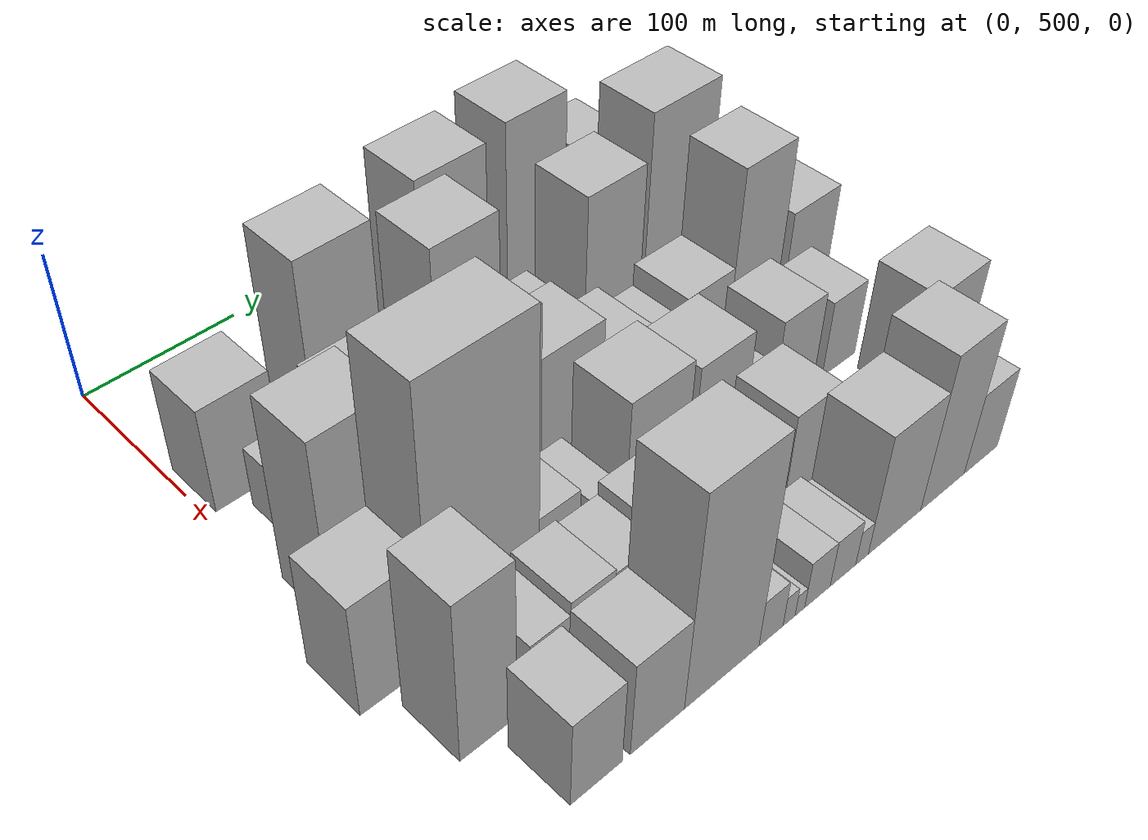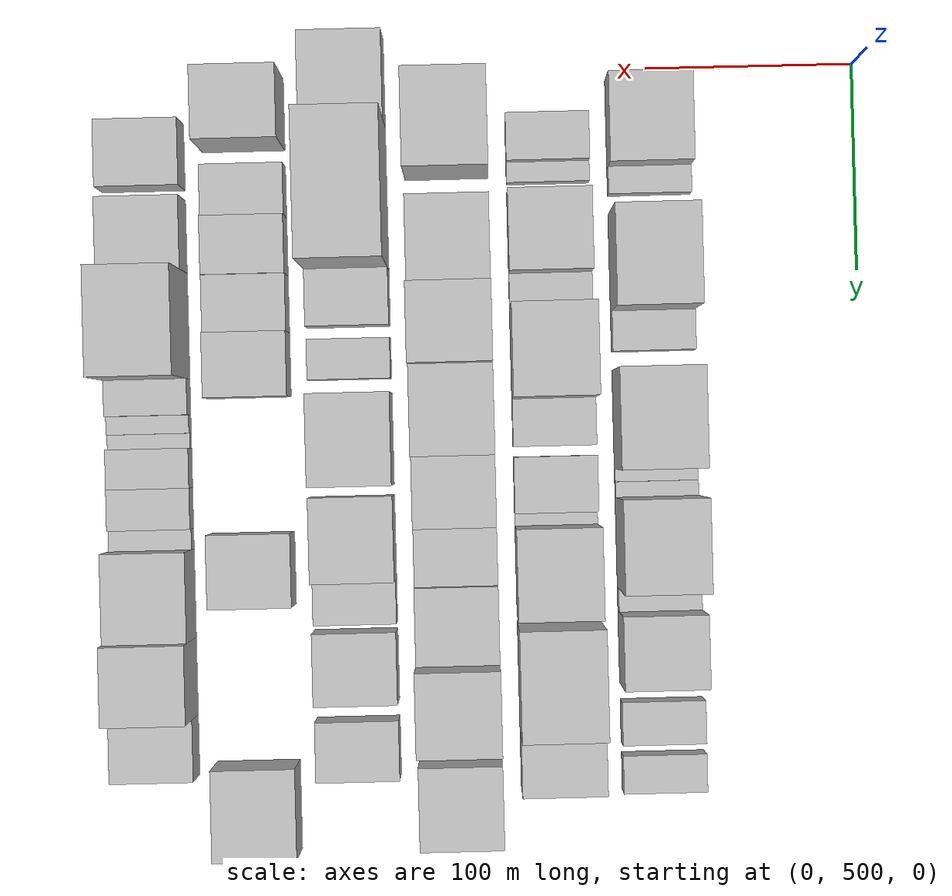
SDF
<sdf version="1.6">
 <world name="default">
  <model name="building_37">
   <static>1</static>
   <pose>100.0000 526.7588 0 0.000000 0.000000 0.000000</pose>
   <link name="link">
    <pose>0 0 36.00 0 0 0</pose>
    <collision name="collision"><geometry><box><size>40.0000 42.7969 72.0000</size></box></geometry></collision>
    <visual name="visual">
     <cast_shadows>0</cast_shadows>
     <geometry><box><size>40.0000 42.7969 72.0000</size></box></geometry>
     <material>
      <script>
       <uri>model://HANNAS_wall/materials/scripts</uri>
       <uri>model://HANNAS_wall/materials/textures</uri>
       <name>vrc/HANNAS_wall</name>
      </script>
     </material>
    </visual>
   </link>
  </model>
  <model name="building_38">
   <static>1</static>
   <pose>100.0000 554.7449 0 0.000000 0.000000 0.000000</pose>
   <link name="link">
    <pose>0 0 13.50 0 0 0</pose>
    <collision name="collision"><geometry><box><size>40.0000 13.1755 27.0000</size></box></geometry></collision>
    <visual name="visual">
     <cast_shadows>0</cast_shadows>
     <geometry><box><size>40.0000 13.1755 27.0000</size></box></geometry>
     <material>
      <script>
       <uri>model://HANNAS_wall/materials/scripts</uri>
       <uri>model://HANNAS_wall/materials/textures</uri>
       <name>vrc/HANNAS_wall</name>
      </script>
     </material>
    </visual>
   </link>
  </model>
  <model name="building_39">
   <static>1</static>
   <pose>100.0000 594.0630 0 0.000000 0.000000 0.000000</pose>
   <link name="link">
    <pose>0 0 64.50 0 0 0</pose>
    <collision name="collision"><geometry><box><size>40.0000 47.4605 129.0000</size></box></geometry></collision>
    <visual name="visual">
     <cast_shadows>0</cast_shadows>
     <geometry><box><size>40.0000 47.4605 129.0000</size></box></geometry>
     <material>
      <script>
       <uri>model://HANNAS_wall/materials/scripts</uri>
       <uri>model://HANNAS_wall/materials/textures</uri>
       <name>vrc/HANNAS_wall</name>
      </script>
     </material>
    </visual>
   </link>
  </model>
  <model name="building_40">
   <static>1</static>
   <pose>100.0000 627.4713 0 0.000000 0.000000 0.000000</pose>
   <link name="link">
    <pose>0 0 16.50 0 0 0</pose>
    <collision name="collision"><geometry><box><size>40.0000 19.3562 33.0000</size></box></geometry></collision>
    <visual name="visual">
     <cast_shadows>0</cast_shadows>
     <geometry><box><size>40.0000 19.3562 33.0000</size></box></geometry>
     <material>
      <script>
       <uri>model://HANNAS_wall/materials/scripts</uri>
       <uri>model://HANNAS_wall/materials/textures</uri>
       <name>vrc/HANNAS_wall</name>
      </script>
     </material>
    </visual>
   </link>
  </model>
  <model name="building_41">
   <static>1</static>
   <pose>100.0000 669.9768 0 0.000000 0.000000 0.000000</pose>
   <link name="link">
    <pose>0 0 69.00 0 0 0</pose>
    <collision name="collision"><geometry><box><size>40.0000 47.6547 138.0000</size></box></geometry></collision>
    <visual name="visual">
     <cast_shadows>0</cast_shadows>
     <geometry><box><size>40.0000 47.6547 138.0000</size></box></geometry>
     <material>
      <script>
       <uri>model://HANNAS_wall/materials/scripts</uri>
       <uri>model://HANNAS_wall/materials/textures</uri>
       <name>vrc/HANNAS_wall</name>
      </script>
     </material>
    </visual>
   </link>
  </model>
  <model name="building_42">
   <static>1</static>
   <pose>100.0000 696.9047 0 0.000000 0.000000 0.000000</pose>
   <link name="link">
    <pose>0 0 7.50 0 0 0</pose>
    <collision name="collision"><geometry><box><size>40.0000 6.2011 15.0000</size></box></geometry></collision>
    <visual name="visual">
     <cast_shadows>0</cast_shadows>
     <geometry><box><size>40.0000 6.2011 15.0000</size></box></geometry>
     <material>
      <script>
       <uri>model://HANNAS_wall/materials/scripts</uri>
       <uri>model://HANNAS_wall/materials/textures</uri>
       <name>vrc/HANNAS_wall</name>
      </script>
     </material>
    </visual>
   </link>
  </model>
  <model name="building_43">
   <static>1</static>
   <pose>100.0000 703.7398 0 0.000000 0.000000 0.000000</pose>
   <link name="link">
    <pose>0 0 9.00 0 0 0</pose>
    <collision name="collision"><geometry><box><size>40.0000 7.4693 18.0000</size></box></geometry></collision>
    <visual name="visual">
     <cast_shadows>0</cast_shadows>
     <geometry><box><size>40.0000 7.4693 18.0000</size></box></geometry>
     <material>
      <script>
       <uri>model://HANNAS_wall/materials/scripts</uri>
       <uri>model://HANNAS_wall/materials/textures</uri>
       <name>vrc/HANNAS_wall</name>
      </script>
     </material>
    </visual>
   </link>
  </model>
  <model name="building_44">
   <static>1</static>
   <pose>100.0000 729.4674 0 0.000000 0.000000 0.000000</pose>
   <link name="link">
    <pose>0 0 72.00 0 0 0</pose>
    <collision name="collision"><geometry><box><size>40.0000 43.9859 144.0000</size></box></geometry></collision>
    <visual name="visual">
     <cast_shadows>0</cast_shadows>
     <geometry><box><size>40.0000 43.9859 144.0000</size></box></geometry>
     <material>
      <script>
       <uri>model://HANNAS_wall/materials/scripts</uri>
       <uri>model://HANNAS_wall/materials/textures</uri>
       <name>vrc/HANNAS_wall</name>
      </script>
     </material>
    </visual>
   </link>
  </model>
  <model name="building_45">
   <static>1</static>
   <pose>100.0000 757.0156 0 0.000000 0.000000 0.000000</pose>
   <link name="link">
    <pose>0 0 13.50 0 0 0</pose>
    <collision name="collision"><geometry><box><size>40.0000 11.1105 27.0000</size></box></geometry></collision>
    <visual name="visual">
     <cast_shadows>0</cast_shadows>
     <geometry><box><size>40.0000 11.1105 27.0000</size></box></geometry>
     <material>
      <script>
       <uri>model://HANNAS_wall/materials/scripts</uri>
       <uri>model://HANNAS_wall/materials/textures</uri>
       <name>vrc/HANNAS_wall</name>
      </script>
     </material>
    </visual>
   </link>
  </model>
  <model name="building_46">
   <static>1</static>
   <pose>100.0000 780.0352 0 0.000000 0.000000 0.000000</pose>
   <link name="link">
    <pose>0 0 49.50 0 0 0</pose>
    <collision name="collision"><geometry><box><size>40.0000 34.9288 99.0000</size></box></geometry></collision>
    <visual name="visual">
     <cast_shadows>0</cast_shadows>
     <geometry><box><size>40.0000 34.9288 99.0000</size></box></geometry>
     <material>
      <script>
       <uri>model://HANNAS_wall/materials/scripts</uri>
       <uri>model://HANNAS_wall/materials/textures</uri>
       <name>vrc/HANNAS_wall</name>
      </script>
     </material>
    </visual>
   </link>
  </model>
  <model name="building_47">
   <static>1</static>
   <pose>100.0000 815.9037 0 0.000000 0.000000 0.000000</pose>
   <link name="link">
    <pose>0 0 19.50 0 0 0</pose>
    <collision name="collision"><geometry><box><size>40.0000 20.8082 39.0000</size></box></geometry></collision>
    <visual name="visual">
     <cast_shadows>0</cast_shadows>
     <geometry><box><size>40.0000 20.8082 39.0000</size></box></geometry>
     <material>
      <script>
       <uri>model://HANNAS_wall/materials/scripts</uri>
       <uri>model://HANNAS_wall/materials/textures</uri>
       <name>vrc/HANNAS_wall</name>
      </script>
     </material>
    </visual>
   </link>
  </model>
  <model name="building_48">
   <static>1</static>
   <pose>100.0000 840.4531 0 0.000000 0.000000 0.000000</pose>
   <link name="link">
    <pose>0 0 18.00 0 0 0</pose>
    <collision name="collision"><geometry><box><size>40.0000 18.2907 36.0000</size></box></geometry></collision>
    <visual name="visual">
     <cast_shadows>0</cast_shadows>
     <geometry><box><size>40.0000 18.2907 36.0000</size></box></geometry>
     <material>
      <script>
       <uri>model://HANNAS_wall/materials/scripts</uri>
       <uri>model://HANNAS_wall/materials/textures</uri>
       <name>vrc/HANNAS_wall</name>
      </script>
     </material>
    </visual>
   </link>
  </model>
  <model name="building_89">
   <static>1</static>
   <pose>149.0000 533.3985 0 0.000000 0.000000 0.000000</pose>
   <link name="link">
    <pose>0 0 21.00 0 0 0</pose>
    <collision name="collision"><geometry><box><size>40.0000 22.8492 42.0000</size></box></geometry></collision>
    <visual name="visual">
     <cast_shadows>0</cast_shadows>
     <geometry><box><size>40.0000 22.8492 42.0000</size></box></geometry>
     <material>
      <script>
       <uri>model://HANNAS_wall/materials/scripts</uri>
       <uri>model://HANNAS_wall/materials/textures</uri>
       <name>vrc/HANNAS_wall</name>
      </script>
     </material>
    </visual>
   </link>
  </model>
  <model name="building_90">
   <static>1</static>
   <pose>149.0000 549.6936 0 0.000000 0.000000 0.000000</pose>
   <link name="link">
    <pose>0 0 12.00 0 0 0</pose>
    <collision name="collision"><geometry><box><size>40.0000 9.7409 24.0000</size></box></geometry></collision>
    <visual name="visual">
     <cast_shadows>0</cast_shadows>
     <geometry><box><size>40.0000 9.7409 24.0000</size></box></geometry>
     <material>
      <script>
       <uri>model://HANNAS_wall/materials/scripts</uri>
       <uri>model://HANNAS_wall/materials/textures</uri>
       <name>vrc/HANNAS_wall</name>
      </script>
     </material>
    </visual>
   </link>
  </model>
  <model name="building_91">
   <static>1</static>
   <pose>149.0000 579.0692 0 0.000000 0.000000 0.000000</pose>
   <link name="link">
    <pose>0 0 37.50 0 0 0</pose>
    <collision name="collision"><geometry><box><size>40.0000 39.0102 75.0000</size></box></geometry></collision>
    <visual name="visual">
     <cast_shadows>0</cast_shadows>
     <geometry><box><size>40.0000 39.0102 75.0000</size></box></geometry>
     <material>
      <script>
       <uri>model://HANNAS_wall/materials/scripts</uri>
       <uri>model://HANNAS_wall/materials/textures</uri>
       <name>vrc/HANNAS_wall</name>
      </script>
     </material>
    </visual>
   </link>
  </model>
  <model name="building_92">
   <static>1</static>
   <pose>149.0000 606.8442 0 0.000000 0.000000 0.000000</pose>
   <link name="link">
    <pose>0 0 15.00 0 0 0</pose>
    <collision name="collision"><geometry><box><size>40.0000 16.5398 30.0000</size></box></geometry></collision>
    <visual name="visual">
     <cast_shadows>0</cast_shadows>
     <geometry><box><size>40.0000 16.5398 30.0000</size></box></geometry>
     <material>
      <script>
       <uri>model://HANNAS_wall/materials/scripts</uri>
       <uri>model://HANNAS_wall/materials/textures</uri>
       <name>vrc/HANNAS_wall</name>
      </script>
     </material>
    </visual>
   </link>
  </model>
  <model name="building_93">
   <static>1</static>
   <pose>149.0000 637.0283 0 0.000000 0.000000 0.000000</pose>
   <link name="link">
    <pose>0 0 70.50 0 0 0</pose>
    <collision name="collision"><geometry><box><size>40.0000 43.8283 141.0000</size></box></geometry></collision>
    <visual name="visual">
     <cast_shadows>0</cast_shadows>
     <geometry><box><size>40.0000 43.8283 141.0000</size></box></geometry>
     <material>
      <script>
       <uri>model://HANNAS_wall/materials/scripts</uri>
       <uri>model://HANNAS_wall/materials/textures</uri>
       <name>vrc/HANNAS_wall</name>
      </script>
     </material>
    </visual>
   </link>
  </model>
  <model name="building_94">
   <static>1</static>
   <pose>149.0000 670.3861 0 0.000000 0.000000 0.000000</pose>
   <link name="link">
    <pose>0 0 21.00 0 0 0</pose>
    <collision name="collision"><geometry><box><size>40.0000 22.8873 42.0000</size></box></geometry></collision>
    <visual name="visual">
     <cast_shadows>0</cast_shadows>
     <geometry><box><size>40.0000 22.8873 42.0000</size></box></geometry>
     <material>
      <script>
       <uri>model://HANNAS_wall/materials/scripts</uri>
       <uri>model://HANNAS_wall/materials/textures</uri>
       <name>vrc/HANNAS_wall</name>
      </script>
     </material>
    </visual>
   </link>
  </model>
  <model name="building_95">
   <static>1</static>
   <pose>149.0000 700.3222 0 0.000000 0.000000 0.000000</pose>
   <link name="link">
    <pose>0 0 24.00 0 0 0</pose>
    <collision name="collision"><geometry><box><size>40.0000 26.9847 48.0000</size></box></geometry></collision>
    <visual name="visual">
     <cast_shadows>0</cast_shadows>
     <geometry><box><size>40.0000 26.9847 48.0000</size></box></geometry>
     <material>
      <script>
       <uri>model://HANNAS_wall/materials/scripts</uri>
       <uri>model://HANNAS_wall/materials/textures</uri>
       <name>vrc/HANNAS_wall</name>
      </script>
     </material>
    </visual>
   </link>
  </model>
  <model name="building_96">
   <static>1</static>
   <pose>149.0000 716.9874 0 0.000000 0.000000 0.000000</pose>
   <link name="link">
    <pose>0 0 7.50 0 0 0</pose>
    <collision name="collision"><geometry><box><size>40.0000 6.3458 15.0000</size></box></geometry></collision>
    <visual name="visual">
     <cast_shadows>0</cast_shadows>
     <geometry><box><size>40.0000 6.3458 15.0000</size></box></geometry>
     <material>
      <script>
       <uri>model://HANNAS_wall/materials/scripts</uri>
       <uri>model://HANNAS_wall/materials/textures</uri>
       <name>vrc/HANNAS_wall</name>
      </script>
     </material>
    </visual>
   </link>
  </model>
  <model name="building_97">
   <static>1</static>
   <pose>149.0000 741.8357 0 0.000000 0.000000 0.000000</pose>
   <link name="link">
    <pose>0 0 58.50 0 0 0</pose>
    <collision name="collision"><geometry><box><size>40.0000 43.3508 117.0000</size></box></geometry></collision>
    <visual name="visual">
     <cast_shadows>0</cast_shadows>
     <geometry><box><size>40.0000 43.3508 117.0000</size></box></geometry>
     <material>
      <script>
       <uri>model://HANNAS_wall/materials/scripts</uri>
       <uri>model://HANNAS_wall/materials/textures</uri>
       <name>vrc/HANNAS_wall</name>
      </script>
     </material>
    </visual>
   </link>
  </model>
  <model name="building_98">
   <static>1</static>
   <pose>149.0000 792.3505 0 0.000000 0.000000 0.000000</pose>
   <link name="link">
    <pose>0 0 73.50 0 0 0</pose>
    <collision name="collision"><geometry><box><size>40.0000 51.6787 147.0000</size></box></geometry></collision>
    <visual name="visual">
     <cast_shadows>0</cast_shadows>
     <geometry><box><size>40.0000 51.6787 147.0000</size></box></geometry>
     <material>
      <script>
       <uri>model://HANNAS_wall/materials/scripts</uri>
       <uri>model://HANNAS_wall/materials/textures</uri>
       <name>vrc/HANNAS_wall</name>
      </script>
     </material>
    </visual>
   </link>
  </model>
  <model name="building_99">
   <static>1</static>
   <pose>149.0000 832.3659 0 0.000000 0.000000 0.000000</pose>
   <link name="link">
    <pose>0 0 46.50 0 0 0</pose>
    <collision name="collision"><geometry><box><size>40.0000 28.3522 93.0000</size></box></geometry></collision>
    <visual name="visual">
     <cast_shadows>0</cast_shadows>
     <geometry><box><size>40.0000 28.3522 93.0000</size></box></geometry>
     <material>
      <script>
       <uri>model://HANNAS_wall/materials/scripts</uri>
       <uri>model://HANNAS_wall/materials/textures</uri>
       <name>vrc/HANNAS_wall</name>
      </script>
     </material>
    </visual>
   </link>
  </model>
  <model name="building_138">
   <static>1</static>
   <pose>198.0000 527.9364 0 0.000000 0.000000 0.000000</pose>
   <link name="link">
    <pose>0 0 63.00 0 0 0</pose>
    <collision name="collision"><geometry><box><size>40.0000 46.4230 126.0000</size></box></geometry></collision>
    <visual name="visual">
     <cast_shadows>0</cast_shadows>
     <geometry><box><size>40.0000 46.4230 126.0000</size></box></geometry>
     <material>
      <script>
       <uri>model://HANNAS_wall/materials/scripts</uri>
       <uri>model://HANNAS_wall/materials/textures</uri>
       <name>vrc/HANNAS_wall</name>
      </script>
     </material>
    </visual>
   </link>
  </model>
  <model name="building_139">
   <static>1</static>
   <pose>198.0000 582.4349 0 0.000000 0.000000 0.000000</pose>
   <link name="link">
    <pose>0 0 36.00 0 0 0</pose>
    <collision name="collision"><geometry><box><size>40.0000 42.5741 72.0000</size></box></geometry></collision>
    <visual name="visual">
     <cast_shadows>0</cast_shadows>
     <geometry><box><size>40.0000 42.5741 72.0000</size></box></geometry>
     <material>
      <script>
       <uri>model://HANNAS_wall/materials/scripts</uri>
       <uri>model://HANNAS_wall/materials/textures</uri>
       <name>vrc/HANNAS_wall</name>
      </script>
     </material>
    </visual>
   </link>
  </model>
  <model name="building_140">
   <static>1</static>
   <pose>198.0000 622.7360 0 0.000000 0.000000 0.000000</pose>
   <link name="link">
    <pose>0 0 61.50 0 0 0</pose>
    <collision name="collision"><geometry><box><size>40.0000 38.0282 123.0000</size></box></geometry></collision>
    <visual name="visual">
     <cast_shadows>0</cast_shadows>
     <geometry><box><size>40.0000 38.0282 123.0000</size></box></geometry>
     <material>
      <script>
       <uri>model://HANNAS_wall/materials/scripts</uri>
       <uri>model://HANNAS_wall/materials/textures</uri>
       <name>vrc/HANNAS_wall</name>
      </script>
     </material>
    </visual>
   </link>
  </model>
  <model name="building_141">
   <static>1</static>
   <pose>198.0000 663.5249 0 0.000000 0.000000 0.000000</pose>
   <link name="link">
    <pose>0 0 43.50 0 0 0</pose>
    <collision name="collision"><geometry><box><size>40.0000 43.5496 87.0000</size></box></geometry></collision>
    <visual name="visual">
     <cast_shadows>0</cast_shadows>
     <geometry><box><size>40.0000 43.5496 87.0000</size></box></geometry>
     <material>
      <script>
       <uri>model://HANNAS_wall/materials/scripts</uri>
       <uri>model://HANNAS_wall/materials/textures</uri>
       <name>vrc/HANNAS_wall</name>
      </script>
     </material>
    </visual>
   </link>
  </model>
  <model name="building_142">
   <static>1</static>
   <pose>198.0000 702.5940 0 0.000000 0.000000 0.000000</pose>
   <link name="link">
    <pose>0 0 31.50 0 0 0</pose>
    <collision name="collision"><geometry><box><size>40.0000 34.5884 63.0000</size></box></geometry></collision>
    <visual name="visual">
     <cast_shadows>0</cast_shadows>
     <geometry><box><size>40.0000 34.5884 63.0000</size></box></geometry>
     <material>
      <script>
       <uri>model://HANNAS_wall/materials/scripts</uri>
       <uri>model://HANNAS_wall/materials/textures</uri>
       <name>vrc/HANNAS_wall</name>
      </script>
     </material>
    </visual>
   </link>
  </model>
  <model name="building_143">
   <static>1</static>
   <pose>198.0000 733.8267 0 0.000000 0.000000 0.000000</pose>
   <link name="link">
    <pose>0 0 24.00 0 0 0</pose>
    <collision name="collision"><geometry><box><size>40.0000 27.8770 48.0000</size></box></geometry></collision>
    <visual name="visual">
     <cast_shadows>0</cast_shadows>
     <geometry><box><size>40.0000 27.8770 48.0000</size></box></geometry>
     <material>
      <script>
       <uri>model://HANNAS_wall/materials/scripts</uri>
       <uri>model://HANNAS_wall/materials/textures</uri>
       <name>vrc/HANNAS_wall</name>
      </script>
     </material>
    </visual>
   </link>
  </model>
  <model name="building_144">
   <static>1</static>
   <pose>198.0000 766.4471 0 0.000000 0.000000 0.000000</pose>
   <link name="link">
    <pose>0 0 31.50 0 0 0</pose>
    <collision name="collision"><geometry><box><size>40.0000 37.3639 63.0000</size></box></geometry></collision>
    <visual name="visual">
     <cast_shadows>0</cast_shadows>
     <geometry><box><size>40.0000 37.3639 63.0000</size></box></geometry>
     <material>
      <script>
       <uri>model://HANNAS_wall/materials/scripts</uri>
       <uri>model://HANNAS_wall/materials/textures</uri>
       <name>vrc/HANNAS_wall</name>
      </script>
     </material>
    </visual>
   </link>
  </model>
  <model name="building_145">
   <static>1</static>
   <pose>198.0000 805.2379 0 0.000000 0.000000 0.000000</pose>
   <link name="link">
    <pose>0 0 64.50 0 0 0</pose>
    <collision name="collision"><geometry><box><size>40.0000 40.2177 129.0000</size></box></geometry></collision>
    <visual name="visual">
     <cast_shadows>0</cast_shadows>
     <geometry><box><size>40.0000 40.2177 129.0000</size></box></geometry>
     <material>
      <script>
       <uri>model://HANNAS_wall/materials/scripts</uri>
       <uri>model://HANNAS_wall/materials/textures</uri>
       <name>vrc/HANNAS_wall</name>
      </script>
     </material>
    </visual>
   </link>
  </model>
  <model name="building_146">
   <static>1</static>
   <pose>198.0000 852.2095 0 0.000000 0.000000 0.000000</pose>
   <link name="link">
    <pose>0 0 37.50 0 0 0</pose>
    <collision name="collision"><geometry><box><size>40.0000 39.7256 75.0000</size></box></geometry></collision>
    <visual name="visual">
     <cast_shadows>0</cast_shadows>
     <geometry><box><size>40.0000 39.7256 75.0000</size></box></geometry>
     <material>
      <script>
       <uri>model://HANNAS_wall/materials/scripts</uri>
       <uri>model://HANNAS_wall/materials/textures</uri>
       <name>vrc/HANNAS_wall</name>
      </script>
     </material>
    </visual>
   </link>
  </model>
  <model name="building_188">
   <static>1</static>
   <pose>247.0000 504.2262 0 0.000000 0.000000 0.000000</pose>
   <link name="link">
    <pose>0 0 39.00 0 0 0</pose>
    <collision name="collision"><geometry><box><size>40.0000 42.4718 78.0000</size></box></geometry></collision>
    <visual name="visual">
     <cast_shadows>0</cast_shadows>
     <geometry><box><size>40.0000 42.4718 78.0000</size></box></geometry>
     <material>
      <script>
       <uri>model://HANNAS_wall/materials/scripts</uri>
       <uri>model://HANNAS_wall/materials/textures</uri>
       <name>vrc/HANNAS_wall</name>
      </script>
     </material>
    </visual>
   </link>
  </model>
  <model name="building_189">
   <static>1</static>
   <pose>247.0000 560.0000 0 0.000000 0.000000 0.000000</pose>
   <link name="link">
    <pose>0 0 91.50 0 0 0</pose>
    <collision name="collision"><geometry><box><size>40.0000 69.0757 183.0000</size></box></geometry></collision>
    <visual name="visual">
     <cast_shadows>0</cast_shadows>
     <geometry><box><size>40.0000 69.0757 183.0000</size></box></geometry>
     <material>
      <script>
       <uri>model://HANNAS_wall/materials/scripts</uri>
       <uri>model://HANNAS_wall/materials/textures</uri>
       <name>vrc/HANNAS_wall</name>
      </script>
     </material>
    </visual>
   </link>
  </model>
  <model name="building_190">
   <static>1</static>
   <pose>247.0000 608.1826 0 0.000000 0.000000 0.000000</pose>
   <link name="link">
    <pose>0 0 24.00 0 0 0</pose>
    <collision name="collision"><geometry><box><size>40.0000 27.2895 48.0000</size></box></geometry></collision>
    <visual name="visual">
     <cast_shadows>0</cast_shadows>
     <geometry><box><size>40.0000 27.2895 48.0000</size></box></geometry>
     <material>
      <script>
       <uri>model://HANNAS_wall/materials/scripts</uri>
       <uri>model://HANNAS_wall/materials/textures</uri>
       <name>vrc/HANNAS_wall</name>
      </script>
     </material>
    </visual>
   </link>
  </model>
  <model name="building_191">
   <static>1</static>
   <pose>247.0000 637.5741 0 0.000000 0.000000 0.000000</pose>
   <link name="link">
    <pose>0 0 18.00 0 0 0</pose>
    <collision name="collision"><geometry><box><size>40.0000 19.4936 36.0000</size></box></geometry></collision>
    <visual name="visual">
     <cast_shadows>0</cast_shadows>
     <geometry><box><size>40.0000 19.4936 36.0000</size></box></geometry>
     <material>
      <script>
       <uri>model://HANNAS_wall/materials/scripts</uri>
       <uri>model://HANNAS_wall/materials/textures</uri>
       <name>vrc/HANNAS_wall</name>
      </script>
     </material>
    </visual>
   </link>
  </model>
  <model name="building_192">
   <static>1</static>
   <pose>247.0000 676.4893 0 0.000000 0.000000 0.000000</pose>
   <link name="link">
    <pose>0 0 42.00 0 0 0</pose>
    <collision name="collision"><geometry><box><size>40.0000 44.3368 84.0000</size></box></geometry></collision>
    <visual name="visual">
     <cast_shadows>0</cast_shadows>
     <geometry><box><size>40.0000 44.3368 84.0000</size></box></geometry>
     <material>
      <script>
       <uri>model://HANNAS_wall/materials/scripts</uri>
       <uri>model://HANNAS_wall/materials/textures</uri>
       <name>vrc/HANNAS_wall</name>
      </script>
     </material>
    </visual>
   </link>
  </model>
  <model name="building_193">
   <static>1</static>
   <pose>247.0000 724.0661 0 0.000000 0.000000 0.000000</pose>
   <link name="link">
    <pose>0 0 37.50 0 0 0</pose>
    <collision name="collision"><geometry><box><size>40.0000 40.8169 75.0000</size></box></geometry></collision>
    <visual name="visual">
     <cast_shadows>0</cast_shadows>
     <geometry><box><size>40.0000 40.8169 75.0000</size></box></geometry>
     <material>
      <script>
       <uri>model://HANNAS_wall/materials/scripts</uri>
       <uri>model://HANNAS_wall/materials/textures</uri>
       <name>vrc/HANNAS_wall</name>
      </script>
     </material>
    </visual>
   </link>
  </model>
  <model name="building_194">
   <static>1</static>
   <pose>247.0000 754.8379 0 0.000000 0.000000 0.000000</pose>
   <link name="link">
    <pose>0 0 19.50 0 0 0</pose>
    <collision name="collision"><geometry><box><size>40.0000 20.7267 39.0000</size></box></geometry></collision>
    <visual name="visual">
     <cast_shadows>0</cast_shadows>
     <geometry><box><size>40.0000 20.7267 39.0000</size></box></geometry>
     <material>
      <script>
       <uri>model://HANNAS_wall/materials/scripts</uri>
       <uri>model://HANNAS_wall/materials/textures</uri>
       <name>vrc/HANNAS_wall</name>
      </script>
     </material>
    </visual>
   </link>
  </model>
  <model name="building_195">
   <static>1</static>
   <pose>247.0000 785.4991 0 0.000000 0.000000 0.000000</pose>
   <link name="link">
    <pose>0 0 33.00 0 0 0</pose>
    <collision name="collision"><geometry><box><size>40.0000 34.5957 66.0000</size></box></geometry></collision>
    <visual name="visual">
     <cast_shadows>0</cast_shadows>
     <geometry><box><size>40.0000 34.5957 66.0000</size></box></geometry>
     <material>
      <script>
       <uri>model://HANNAS_wall/materials/scripts</uri>
       <uri>model://HANNAS_wall/materials/textures</uri>
       <name>vrc/HANNAS_wall</name>
      </script>
     </material>
    </visual>
   </link>
  </model>
  <model name="building_196">
   <static>1</static>
   <pose>247.0000 825.1331 0 0.000000 0.000000 0.000000</pose>
   <link name="link">
    <pose>0 0 27.00 0 0 0</pose>
    <collision name="collision"><geometry><box><size>40.0000 28.6722 54.0000</size></box></geometry></collision>
    <visual name="visual">
     <cast_shadows>0</cast_shadows>
     <geometry><box><size>40.0000 28.6722 54.0000</size></box></geometry>
     <material>
      <script>
       <uri>model://HANNAS_wall/materials/scripts</uri>
       <uri>model://HANNAS_wall/materials/textures</uri>
       <name>vrc/HANNAS_wall</name>
      </script>
     </material>
    </visual>
   </link>
  </model>
  <model name="building_241">
   <static>1</static>
   <pose>296.0000 517.8524 0 0.000000 0.000000 0.000000</pose>
   <link name="link">
    <pose>0 0 55.50 0 0 0</pose>
    <collision name="collision"><geometry><box><size>40.0000 34.5873 111.0000</size></box></geometry></collision>
    <visual name="visual">
     <cast_shadows>0</cast_shadows>
     <geometry><box><size>40.0000 34.5873 111.0000</size></box></geometry>
     <material>
      <script>
       <uri>model://HANNAS_wall/materials/scripts</uri>
       <uri>model://HANNAS_wall/materials/textures</uri>
       <name>vrc/HANNAS_wall</name>
      </script>
     </material>
    </visual>
   </link>
  </model>
  <model name="building_242">
   <static>1</static>
   <pose>296.0000 555.5955 0 0.000000 0.000000 0.000000</pose>
   <link name="link">
    <pose>0 0 22.50 0 0 0</pose>
    <collision name="collision"><geometry><box><size>40.0000 24.8989 45.0000</size></box></geometry></collision>
    <visual name="visual">
     <cast_shadows>0</cast_shadows>
     <geometry><box><size>40.0000 24.8989 45.0000</size></box></geometry>
     <material>
      <script>
       <uri>model://HANNAS_wall/materials/scripts</uri>
       <uri>model://HANNAS_wall/materials/textures</uri>
       <name>vrc/HANNAS_wall</name>
      </script>
     </material>
    </visual>
   </link>
  </model>
  <model name="building_243">
   <static>1</static>
   <pose>296.0000 582.1483 0 0.000000 0.000000 0.000000</pose>
   <link name="link">
    <pose>0 0 27.00 0 0 0</pose>
    <collision name="collision"><geometry><box><size>40.0000 28.2067 54.0000</size></box></geometry></collision>
    <visual name="visual">
     <cast_shadows>0</cast_shadows>
     <geometry><box><size>40.0000 28.2067 54.0000</size></box></geometry>
     <material>
      <script>
       <uri>model://HANNAS_wall/materials/scripts</uri>
       <uri>model://HANNAS_wall/materials/textures</uri>
       <name>vrc/HANNAS_wall</name>
      </script>
     </material>
    </visual>
   </link>
  </model>
  <model name="building_244">
   <static>1</static>
   <pose>296.0000 610.0444 0 0.000000 0.000000 0.000000</pose>
   <link name="link">
    <pose>0 0 25.50 0 0 0</pose>
    <collision name="collision"><geometry><box><size>40.0000 27.5856 51.0000</size></box></geometry></collision>
    <visual name="visual">
     <cast_shadows>0</cast_shadows>
     <geometry><box><size>40.0000 27.5856 51.0000</size></box></geometry>
     <material>
      <script>
       <uri>model://HANNAS_wall/materials/scripts</uri>
       <uri>model://HANNAS_wall/materials/textures</uri>
       <name>vrc/HANNAS_wall</name>
      </script>
     </material>
    </visual>
   </link>
  </model>
  <model name="building_245">
   <static>1</static>
   <pose>296.0000 639.3770 0 0.000000 0.000000 0.000000</pose>
   <link name="link">
    <pose>0 0 30.00 0 0 0</pose>
    <collision name="collision"><geometry><box><size>40.0000 31.0795 60.0000</size></box></geometry></collision>
    <visual name="visual">
     <cast_shadows>0</cast_shadows>
     <geometry><box><size>40.0000 31.0795 60.0000</size></box></geometry>
     <material>
      <script>
       <uri>model://HANNAS_wall/materials/scripts</uri>
       <uri>model://HANNAS_wall/materials/textures</uri>
       <name>vrc/HANNAS_wall</name>
      </script>
     </material>
    </visual>
   </link>
  </model>
  <model name="building_246">
   <static>1</static>
   <pose>296.0000 737.8481 0 0.000000 0.000000 0.000000</pose>
   <link name="link">
    <pose>0 0 33.00 0 0 0</pose>
    <collision name="collision"><geometry><box><size>40.0000 35.2876 66.0000</size></box></geometry></collision>
    <visual name="visual">
     <cast_shadows>0</cast_shadows>
     <geometry><box><size>40.0000 35.2876 66.0000</size></box></geometry>
     <material>
      <script>
       <uri>model://HANNAS_wall/materials/scripts</uri>
       <uri>model://HANNAS_wall/materials/textures</uri>
       <name>vrc/HANNAS_wall</name>
      </script>
     </material>
    </visual>
   </link>
  </model>
  <model name="building_247">
   <static>1</static>
   <pose>296.0000 852.7553 0 0.000000 0.000000 0.000000</pose>
   <link name="link">
    <pose>0 0 39.00 0 0 0</pose>
    <collision name="collision"><geometry><box><size>40.0000 43.5089 78.0000</size></box></geometry></collision>
    <visual name="visual">
     <cast_shadows>0</cast_shadows>
     <geometry><box><size>40.0000 43.5089 78.0000</size></box></geometry>
     <material>
      <script>
       <uri>model://HANNAS_wall/materials/scripts</uri>
       <uri>model://HANNAS_wall/materials/textures</uri>
       <name>vrc/HANNAS_wall</name>
      </script>
     </material>
    </visual>
   </link>
  </model>
  <model name="building_285">
   <static>1</static>
   <pose>345.0000 537.3932 0 0.000000 0.000000 0.000000</pose>
   <link name="link">
    <pose>0 0 30.00 0 0 0</pose>
    <collision name="collision"><geometry><box><size>40.0000 32.0141 60.0000</size></box></geometry></collision>
    <visual name="visual">
     <cast_shadows>0</cast_shadows>
     <geometry><box><size>40.0000 32.0141 60.0000</size></box></geometry>
     <material>
      <script>
       <uri>model://HANNAS_wall/materials/scripts</uri>
       <uri>model://HANNAS_wall/materials/textures</uri>
       <name>vrc/HANNAS_wall</name>
      </script>
     </material>
    </visual>
   </link>
  </model>
  <model name="building_286">
   <static>1</static>
   <pose>345.0000 576.0215 0 0.000000 0.000000 0.000000</pose>
   <link name="link">
    <pose>0 0 33.00 0 0 0</pose>
    <collision name="collision"><geometry><box><size>40.0000 35.2423 66.0000</size></box></geometry></collision>
    <visual name="visual">
     <cast_shadows>0</cast_shadows>
     <geometry><box><size>40.0000 35.2423 66.0000</size></box></geometry>
     <material>
      <script>
       <uri>model://HANNAS_wall/materials/scripts</uri>
       <uri>model://HANNAS_wall/materials/textures</uri>
       <name>vrc/HANNAS_wall</name>
      </script>
     </material>
    </visual>
   </link>
  </model>
  <model name="building_287">
   <static>1</static>
   <pose>345.0000 619.3552 0 0.000000 0.000000 0.000000</pose>
   <link name="link">
    <pose>0 0 73.50 0 0 0</pose>
    <collision name="collision"><geometry><box><size>40.0000 51.4252 147.0000</size></box></geometry></collision>
    <visual name="visual">
     <cast_shadows>0</cast_shadows>
     <geometry><box><size>40.0000 51.4252 147.0000</size></box></geometry>
     <material>
      <script>
       <uri>model://HANNAS_wall/materials/scripts</uri>
       <uri>model://HANNAS_wall/materials/textures</uri>
       <name>vrc/HANNAS_wall</name>
      </script>
     </material>
    </visual>
   </link>
  </model>
  <model name="building_288">
   <static>1</static>
   <pose>345.0000 653.7789 0 0.000000 0.000000 0.000000</pose>
   <link name="link">
    <pose>0 0 16.50 0 0 0</pose>
    <collision name="collision"><geometry><box><size>40.0000 17.4223 33.0000</size></box></geometry></collision>
    <visual name="visual">
     <cast_shadows>0</cast_shadows>
     <geometry><box><size>40.0000 17.4223 33.0000</size></box></geometry>
     <material>
      <script>
       <uri>model://HANNAS_wall/materials/scripts</uri>
       <uri>model://HANNAS_wall/materials/textures</uri>
       <name>vrc/HANNAS_wall</name>
      </script>
     </material>
    </visual>
   </link>
  </model>
  <model name="building_289">
   <static>1</static>
   <pose>345.0000 666.9153 0 0.000000 0.000000 0.000000</pose>
   <link name="link">
    <pose>0 0 10.50 0 0 0</pose>
    <collision name="collision"><geometry><box><size>40.0000 8.8505 21.0000</size></box></geometry></collision>
    <visual name="visual">
     <cast_shadows>0</cast_shadows>
     <geometry><box><size>40.0000 8.8505 21.0000</size></box></geometry>
     <material>
      <script>
       <uri>model://HANNAS_wall/materials/scripts</uri>
       <uri>model://HANNAS_wall/materials/textures</uri>
       <name>vrc/HANNAS_wall</name>
      </script>
     </material>
    </visual>
   </link>
  </model>
  <model name="building_290">
   <static>1</static>
   <pose>345.0000 674.9157 0 0.000000 0.000000 0.000000</pose>
   <link name="link">
    <pose>0 0 7.50 0 0 0</pose>
    <collision name="collision"><geometry><box><size>40.0000 7.1503 15.0000</size></box></geometry></collision>
    <visual name="visual">
     <cast_shadows>0</cast_shadows>
     <geometry><box><size>40.0000 7.1503 15.0000</size></box></geometry>
     <material>
      <script>
       <uri>model://HANNAS_wall/materials/scripts</uri>
       <uri>model://HANNAS_wall/materials/textures</uri>
       <name>vrc/HANNAS_wall</name>
      </script>
     </material>
    </visual>
   </link>
  </model>
  <model name="building_291">
   <static>1</static>
   <pose>345.0000 688.1224 0 0.000000 0.000000 0.000000</pose>
   <link name="link">
    <pose>0 0 16.50 0 0 0</pose>
    <collision name="collision"><geometry><box><size>40.0000 19.2632 33.0000</size></box></geometry></collision>
    <visual name="visual">
     <cast_shadows>0</cast_shadows>
     <geometry><box><size>40.0000 19.2632 33.0000</size></box></geometry>
     <material>
      <script>
       <uri>model://HANNAS_wall/materials/scripts</uri>
       <uri>model://HANNAS_wall/materials/textures</uri>
       <name>vrc/HANNAS_wall</name>
      </script>
     </material>
    </visual>
   </link>
  </model>
  <model name="building_292">
   <static>1</static>
   <pose>345.0000 707.6535 0 0.000000 0.000000 0.000000</pose>
   <link name="link">
    <pose>0 0 16.50 0 0 0</pose>
    <collision name="collision"><geometry><box><size>40.0000 19.7991 33.0000</size></box></geometry></collision>
    <visual name="visual">
     <cast_shadows>0</cast_shadows>
     <geometry><box><size>40.0000 19.7991 33.0000</size></box></geometry>
     <material>
      <script>
       <uri>model://HANNAS_wall/materials/scripts</uri>
       <uri>model://HANNAS_wall/materials/textures</uri>
       <name>vrc/HANNAS_wall</name>
      </script>
     </material>
    </visual>
   </link>
  </model>
  <model name="building_293">
   <static>1</static>
   <pose>345.0000 722.5531 0 0.000000 0.000000 0.000000</pose>
   <link name="link">
    <pose>0 0 12.00 0 0 0</pose>
    <collision name="collision"><geometry><box><size>40.0000 10.0000 24.0000</size></box></geometry></collision>
    <visual name="visual">
     <cast_shadows>0</cast_shadows>
     <geometry><box><size>40.0000 10.0000 24.0000</size></box></geometry>
     <material>
      <script>
       <uri>model://HANNAS_wall/materials/scripts</uri>
       <uri>model://HANNAS_wall/materials/textures</uri>
       <name>vrc/HANNAS_wall</name>
      </script>
     </material>
    </visual>
   </link>
  </model>
  <model name="building_294">
   <static>1</static>
   <pose>345.0000 749.0162 0 0.000000 0.000000 0.000000</pose>
   <link name="link">
    <pose>0 0 42.00 0 0 0</pose>
    <collision name="collision"><geometry><box><size>40.0000 42.9262 84.0000</size></box></geometry></collision>
    <visual name="visual">
     <cast_shadows>0</cast_shadows>
     <geometry><box><size>40.0000 42.9262 84.0000</size></box></geometry>
     <material>
      <script>
       <uri>model://HANNAS_wall/materials/scripts</uri>
       <uri>model://HANNAS_wall/materials/textures</uri>
       <name>vrc/HANNAS_wall</name>
      </script>
     </material>
    </visual>
   </link>
  </model>
  <model name="building_295">
   <static>1</static>
   <pose>345.0000 789.1989 0 0.000000 0.000000 0.000000</pose>
   <link name="link">
    <pose>0 0 54.00 0 0 0</pose>
    <collision name="collision"><geometry><box><size>40.0000 37.4393 108.0000</size></box></geometry></collision>
    <visual name="visual">
     <cast_shadows>0</cast_shadows>
     <geometry><box><size>40.0000 37.4393 108.0000</size></box></geometry>
     <material>
      <script>
       <uri>model://HANNAS_wall/materials/scripts</uri>
       <uri>model://HANNAS_wall/materials/textures</uri>
       <name>vrc/HANNAS_wall</name>
      </script>
     </material>
    </visual>
   </link>
  </model>
  <model name="building_296">
   <static>1</static>
   <pose>345.0000 822.6596 0 0.000000 0.000000 0.000000</pose>
   <link name="link">
    <pose>0 0 28.50 0 0 0</pose>
    <collision name="collision"><geometry><box><size>40.0000 29.4820 57.0000</size></box></geometry></collision>
    <visual name="visual">
     <cast_shadows>0</cast_shadows>
     <geometry><box><size>40.0000 29.4820 57.0000</size></box></geometry>
     <material>
      <script>
       <uri>model://HANNAS_wall/materials/scripts</uri>
       <uri>model://HANNAS_wall/materials/textures</uri>
       <name>vrc/HANNAS_wall</name>
      </script>
     </material>
    </visual>
   </link>
  </model>
 </world>
</sdf>
